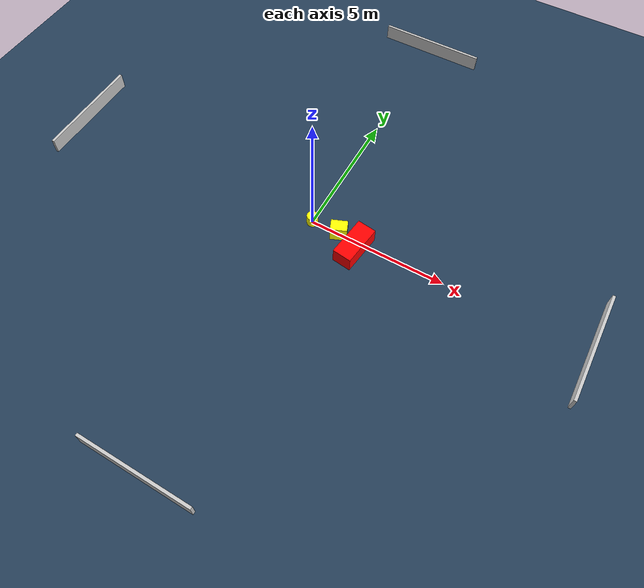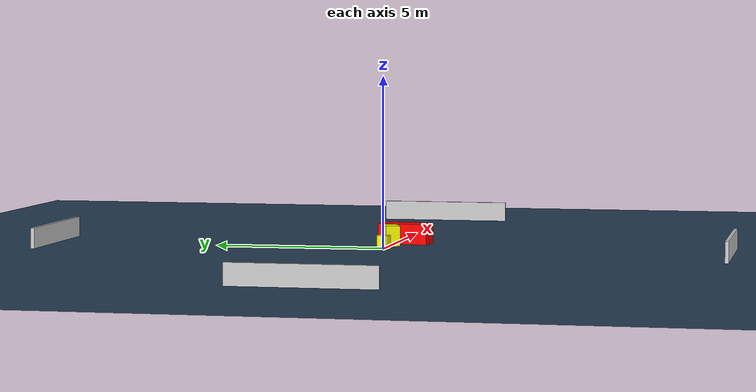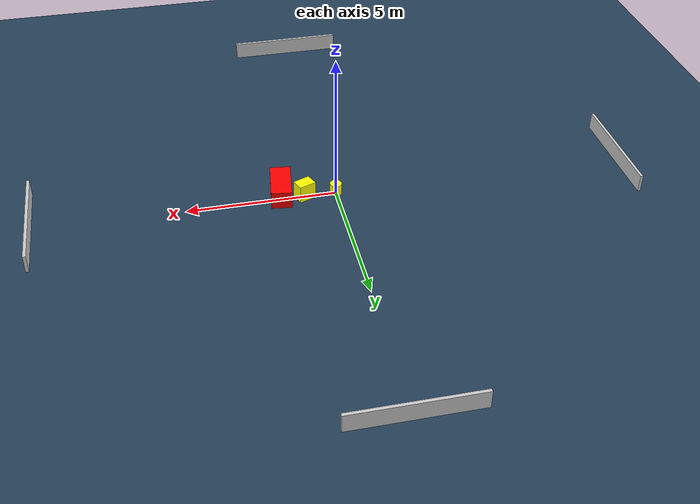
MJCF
<?xml version="1.0" ?>
<mujoco model="generated_environment">
  <option timestep="0.01" integrator="RK4" cone="elliptic"/>
  <default>
    <geom density="1"/>
  </default>
  <asset>
    <texture builtin="gradient" height="3072" name="skybox" rgb1="0.3 0.5 0.7" rgb2="0 0 0" type="skybox" width="512"/>
    <texture builtin="checker" height="300" name="groundplane" rgb1="0.2 0.3 0.4" rgb2="0.1 0.2 0.3" type="2d" width="300"/>
    <material name="groundplane" reflectance="0.2" texrepeat="5 5" texture="groundplane"/>
  </asset>
  <worldbody>
    <light dir="0 0 -1" directional="true" pos="0 0 1.5"/>
    <geom condim="3" friction="0.5 0.005 0.001" material="groundplane" name="floor" pos="0 0 0" size="0 0 0.05" type="plane"/>
    <body name="walls">
      <geom name="wall_1" condim="4" pos="-10.0 0.0 0.3" rgba="0.800000011920929 0.800000011920929 0.800000011920929 1.0" size="0.05 2.0 0.3" type="box"/>
      <geom name="wall_2" condim="4" pos="10.0 0.0 0.3" rgba="0.800000011920929 0.800000011920929 0.800000011920929 1.0" size="0.05 2.0 0.3" type="box"/>
      <geom name="wall_3" condim="4" pos="0.0 -10.0 0.3" rgba="0.800000011920929 0.800000011920929 0.800000011920929 1.0" size="2.0 0.05 0.3" type="box"/>
      <geom name="wall_4" condim="4" pos="0.0 10.0 0.3" rgba="0.800000011920929 0.800000011920929 0.800000011920929 1.0" size="2.0 0.05 0.3" type="box"/>
    </body>
    <body name="robot">
      <joint name="joint_x" type="slide" pos="0 0 0" axis="1 0 0"/>
      <joint name="joint_y" type="slide" pos="0 0 0" axis="0 1 0"/>
      <geom name="robot" type="cylinder" pos="0.0 0.0 0.2" size="0.2 0.2 0.0" mass="5.0" friction="1.0 0.005 0.0001" condim="4" rgba="1.0 1.0 0.0 1.0"/>
    </body>
    <body name="obstacle_1_movable">
      <geom name="obstacle_1_movable" condim="4" pos="1.0570895909651867 -0.010010541252856508 0.3" euler="0 0 202.43366534018898" friction="0.0 0.005 0.001" rgba="1.0 1.0 0.0 1.0" size="0.2963785845058965 0.21099028141395293 0.3" type="box" mass="0.1"/>
      <joint type="free"/>
    </body>
    <body name="obstacle_2_static">
      <geom name="obstacle_2_static" condim="4" pos="1.8046219662717675 -0.2956950846334219 0.3" euler="0 0 352.6136022534122" friction="0.0 0.005 0.001" rgba="1.0 0.0 0.0 1.0" size="0.3454816746331113 0.746542542754673 0.3" type="box"/>
    </body>
  </worldbody>
  <actuator>
    <motor name="actuator_x" joint="joint_x" gear="1" ctrlrange="-1 1"/>
    <motor name="actuator_y" joint="joint_y" gear="1" ctrlrange="-1 1"/>
  </actuator>
</mujoco>
